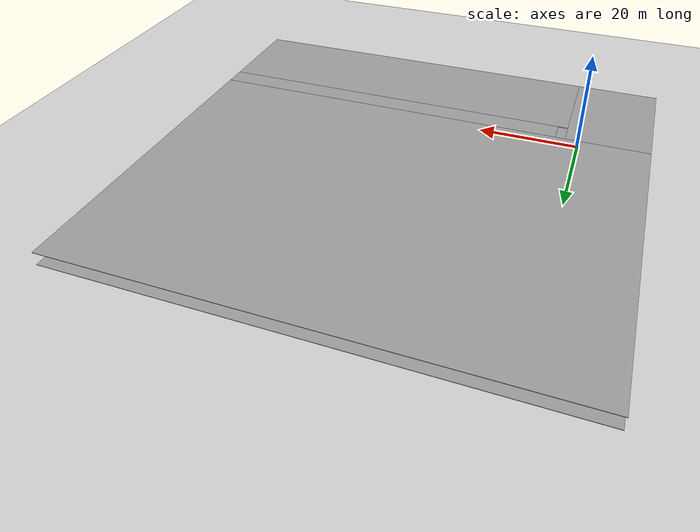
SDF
<sdf version="1.7">
 <world name="default">
  <model name="ground_plane">
   <pose>30 30 0 0 -0 0</pose>
   <static>1</static>
   <link name="link">
    <collision name="collision">
     <geometry><plane><normal>0 0 1</normal><size>100 100</size></plane></geometry>
     <surface><friction><ode><mu>100</mu><mu2>50</mu2></ode></friction></surface>
    </collision>
    <visual name="visual">
     <cast_shadows>0</cast_shadows>
     <geometry><plane><normal>0 0 1</normal><size>100 100</size></plane></geometry>
     <material>
      <script><uri>file://media/materials/scripts/gazebo.material</uri><name>Gazebo/Grey</name></script>
     </material>
    </visual>
   </link>
  </model>
  <model name="Soterrani_AT">
   <pose>30.7763 24.7178 0 0 0 -1.57187</pose>
   <link name="Floor_1">
    <pose>2e-06 -1e-06 2.5 0 -0 0</pose>
    <visual name="Floor_1_Visual_0">
     <pose>-11.1669 0 0.05 0 -0 0</pose>
     <geometry><box><size>60.0186 88.6934 0.1</size></box></geometry>
     <material>
      <script><uri>file://media/materials/scripts/gazebo.material</uri><name>Gazebo/Grey</name></script>
      <ambient>1 1 1 1</ambient>
     </material>
     <meta><layer>1</layer></meta>
    </visual>
    <collision name="Floor_1_Collision_0">
     <geometry><box><size>60.0186 88.6934 0.1</size></box></geometry>
     <pose>-11.1669 0 0.05 0 -0 0</pose>
    </collision>
    <visual name="Floor_1_Visual_1">
     <pose>30.0093 -36.3795 0.05 0 -0 0</pose>
     <geometry><box><size>22.3339 15.9343 0.1</size></box></geometry>
     <material>
      <script><uri>file://media/materials/scripts/gazebo.material</uri><name>Gazebo/Grey</name></script>
      <ambient>1 1 1 1</ambient>
     </material>
     <meta><layer>1</layer></meta>
    </visual>
    <collision name="Floor_1_Collision_1">
     <geometry><box><size>22.3339 15.9343 0.1</size></box></geometry>
     <pose>30.0093 -36.3795 0.05 0 -0 0</pose>
    </collision>
    <visual name="Floor_1_Visual_2">
     <pose>32.0601 7.96714 0.05 0 -0 0</pose>
     <geometry><box><size>18.2324 72.7591 0.1</size></box></geometry>
     <material>
      <script><uri>file://media/materials/scripts/gazebo.material</uri><name>Gazebo/Grey</name></script>
      <ambient>1 1 1 1</ambient>
     </material>
     <meta><layer>1</layer></meta>
    </visual>
    <collision name="Floor_1_Collision_2">
     <geometry><box><size>18.2324 72.7591 0.1</size></box></geometry>
     <pose>32.0601 7.96714 0.05 0 -0 0</pose>
    </collision>
    <visual name="Floor_1_Visual_3">
     <pose>20.8931 8.88068 0.05 0 -0 0</pose>
     <geometry><box><size>4.1015 70.932 0.1</size></box></geometry>
     <material>
      <script><uri>file://media/materials/scripts/gazebo.material</uri><name>Gazebo/Grey</name></script>
      <ambient>1 1 1 1</ambient>
     </material>
     <meta><layer>1</layer></meta>
    </visual>
    <collision name="Floor_1_Collision_3">
     <geometry><box><size>4.1015 70.932 0.1</size></box></geometry>
     <pose>20.8931 8.88068 0.05 0 -0 0</pose>
    </collision>
   </link>
   <link name="Floor_2">
    <pose>2e-06 -1e-06 5 0 -0 0</pose>
    <visual name="Floor_2_Visual_0">
     <pose>-11.1613 0 0.05 0 -0 0</pose>
     <geometry><box><size>60.03 88.6934 0.1</size></box></geometry>
     <material>
      <script><uri>file://media/materials/scripts/gazebo.material</uri><name>Gazebo/Grey</name></script>
      <ambient>1 1 1 1</ambient>
     </material>
     <meta><layer>2</layer></meta>
    </visual>
    <collision name="Floor_2_Collision_0">
     <geometry><box><size>60.03 88.6934 0.1</size></box></geometry>
     <pose>-11.1613 0 0.05 0 -0 0</pose>
    </collision>
    <visual name="Floor_2_Visual_1">
     <pose>30.015 -36.4004 0.05 0 -0 0</pose>
     <geometry><box><size>22.3226 15.8926 0.1</size></box></geometry>
     <material>
      <script><uri>file://media/materials/scripts/gazebo.material</uri><name>Gazebo/Grey</name></script>
      <ambient>1 1 1 1</ambient>
     </material>
     <meta><layer>2</layer></meta>
    </visual>
    <collision name="Floor_2_Collision_1">
     <geometry><box><size>22.3226 15.8926 0.1</size></box></geometry>
     <pose>30.015 -36.4004 0.05 0 -0 0</pose>
    </collision>
    <visual name="Floor_2_Visual_2">
     <pose>32.059 7.94632 0.05 0 -0 0</pose>
     <geometry><box><size>18.2346 72.8007 0.1</size></box></geometry>
     <material>
      <script><uri>file://media/materials/scripts/gazebo.material</uri><name>Gazebo/Grey</name></script>
      <ambient>1 1 1 1</ambient>
     </material>
     <meta><layer>2</layer></meta>
    </visual>
    <collision name="Floor_2_Collision_2">
     <geometry><box><size>18.2346 72.8007 0.1</size></box></geometry>
     <pose>32.059 7.94632 0.05 0 -0 0</pose>
    </collision>
    <visual name="Floor_2_Visual_3">
     <pose>20.8977 8.87865 0.05 0 -0 0</pose>
     <geometry><box><size>4.08797 70.9361 0.1</size></box></geometry>
     <material>
      <script><uri>file://media/materials/scripts/gazebo.material</uri><name>Gazebo/Grey</name></script>
      <ambient>1 1 1 1</ambient>
     </material>
     <meta><layer>2</layer></meta>
    </visual>
    <collision name="Floor_2_Collision_3">
     <geometry><box><size>4.08797 70.9361 0.1</size></box></geometry>
     <pose>20.8977 8.87865 0.05 0 -0 0</pose>
    </collision>
   </link>
   <link name="Stairs_1">
    <visual name="Stairs_1_Visual_0">
     <pose>22.8072 -27.4989 0.083333 0 -0 -1.5708</pose>
     <geometry><box><size>1.82706 0.273433 0.166667</size></box></geometry>
     <material>
      <script><uri>file://media/materials/scripts/gazebo.material</uri><name>Gazebo/Grey</name></script>
      <ambient>1 1 1 1</ambient>
     </material>
     <meta><layer>0</layer></meta>
    </visual>
    <collision name="Stairs_1_Collision_0">
     <geometry><box><size>1.82706 0.273433 0.166667</size></box></geometry>
     <pose>22.8072 -27.4989 0.083333 0 -0 -1.5708</pose>
    </collision>
    <visual name="Stairs_1_Visual_1">
     <pose>22.5337 -27.4989 0.25 0 -0 -1.5708</pose>
     <geometry><box><size>1.82706 0.273433 0.166667</size></box></geometry>
     <material>
      <script><uri>file://media/materials/scripts/gazebo.material</uri><name>Gazebo/Grey</name></script>
      <ambient>1 1 1 1</ambient>
     </material>
     <meta><layer>0</layer></meta>
    </visual>
    <collision name="Stairs_1_Collision_1">
     <geometry><box><size>1.82706 0.273433 0.166667</size></box></geometry>
     <pose>22.5337 -27.4989 0.25 0 -0 -1.5708</pose>
    </collision>
    <visual name="Stairs_1_Visual_2">
     <pose>22.2603 -27.4989 0.416667 0 -0 -1.5708</pose>
     <geometry><box><size>1.82706 0.273433 0.166667</size></box></geometry>
     <material>
      <script><uri>file://media/materials/scripts/gazebo.material</uri><name>Gazebo/Grey</name></script>
      <ambient>1 1 1 1</ambient>
     </material>
     <meta><layer>0</layer></meta>
    </visual>
    <collision name="Stairs_1_Collision_2">
     <geometry><box><size>1.82706 0.273433 0.166667</size></box></geometry>
     <pose>22.2603 -27.4989 0.416667 0 -0 -1.5708</pose>
    </collision>
    <visual name="Stairs_1_Visual_3">
     <pose>21.9869 -27.4989 0.583333 0 -0 -1.5708</pose>
     <geometry><box><size>1.82706 0.273433 0.166667</size></box></geometry>
     <material>
      <script><uri>file://media/materials/scripts/gazebo.material</uri><name>Gazebo/Grey</name></script>
      <ambient>1 1 1 1</ambient>
     </material>
     <meta><layer>0</layer></meta>
    </visual>
    <collision name="Stairs_1_Collision_3">
     <geometry><box><size>1.82706 0.273433 0.166667</size></box></geometry>
     <pose>21.9869 -27.4989 0.583333 0 -0 -1.5708</pose>
    </collision>
    <visual name="Stairs_1_Visual_4">
     <pose>21.7134 -27.4989 0.75 0 -0 -1.5708</pose>
     <geometry><box><size>1.82706 0.273433 0.166667</size></box></geometry>
     <material>
      <script><uri>file://media/materials/scripts/gazebo.material</uri><name>Gazebo/Grey</name></script>
      <ambient>1 1 1 1</ambient>
     </material>
     <meta><layer>0</layer></meta>
    </visual>
    <collision name="Stairs_1_Collision_4">
     <geometry><box><size>1.82706 0.273433 0.166667</size></box></geometry>
     <pose>21.7134 -27.4989 0.75 0 -0 -1.5708</pose>
    </collision>
    <visual name="Stairs_1_Visual_5">
     <pose>21.44 -27.4989 0.916667 0 -0 -1.5708</pose>
     <geometry><box><size>1.82706 0.273433 0.166667</size></box></geometry>
     <material>
      <script><uri>file://media/materials/scripts/gazebo.material</uri><name>Gazebo/Grey</name></script>
      <ambient>1 1 1 1</ambient>
     </material>
     <meta><layer>0</layer></meta>
    </visual>
    <collision name="Stairs_1_Collision_5">
     <geometry><box><size>1.82706 0.273433 0.166667</size></box></geometry>
     <pose>21.44 -27.4989 0.916667 0 -0 -1.5708</pose>
    </collision>
    <visual name="Stairs_1_Visual_6">
     <pose>21.1666 -27.4989 1.08333 0 -0 -1.5708</pose>
     <geometry><box><size>1.82706 0.273433 0.166667</size></box></geometry>
     <material>
      <script><uri>file://media/materials/scripts/gazebo.material</uri><name>Gazebo/Grey</name></script>
      <ambient>1 1 1 1</ambient>
     </material>
     <meta><layer>0</layer></meta>
    </visual>
    <collision name="Stairs_1_Collision_6">
     <geometry><box><size>1.82706 0.273433 0.166667</size></box></geometry>
     <pose>21.1666 -27.4989 1.08333 0 -0 -1.5708</pose>
    </collision>
    <visual name="Stairs_1_Visual_7">
     <pose>20.8931 -27.4989 1.25 0 -0 -1.5708</pose>
     <geometry><box><size>1.82706 0.273433 0.166667</size></box></geometry>
     <material>
      <script><uri>file://media/materials/scripts/gazebo.material</uri><name>Gazebo/Grey</name></script>
      <ambient>1 1 1 1</ambient>
     </material>
     <meta><layer>0</layer></meta>
    </visual>
    <collision name="Stairs_1_Collision_7">
     <geometry><box><size>1.82706 0.273433 0.166667</size></box></geometry>
     <pose>20.8931 -27.4989 1.25 0 -0 -1.5708</pose>
    </collision>
    <visual name="Stairs_1_Visual_8">
     <pose>20.6197 -27.4989 1.41667 0 -0 -1.5708</pose>
     <geometry><box><size>1.82706 0.273433 0.166667</size></box></geometry>
     <material>
      <script><uri>file://media/materials/scripts/gazebo.material</uri><name>Gazebo/Grey</name></script>
      <ambient>1 1 1 1</ambient>
     </material>
     <meta><layer>0</layer></meta>
    </visual>
    <collision name="Stairs_1_Collision_8">
     <geometry><box><size>1.82706 0.273433 0.166667</size></box></geometry>
     <pose>20.6197 -27.4989 1.41667 0 -0 -1.5708</pose>
    </collision>
    <visual name="Stairs_1_Visual_9">
     <pose>20.3463 -27.4989 1.58333 0 -0 -1.5708</pose>
     <geometry><box><size>1.82706 0.273433 0.166667</size></box></geometry>
     <material>
      <script><uri>file://media/materials/scripts/gazebo.material</uri><name>Gazebo/Grey</name></script>
      <ambient>1 1 1 1</ambient>
     </material>
     <meta><layer>0</layer></meta>
    </visual>
    <collision name="Stairs_1_Collision_9">
     <geometry><box><size>1.82706 0.273433 0.166667</size></box></geometry>
     <pose>20.3463 -27.4989 1.58333 0 -0 -1.5708</pose>
    </collision>
    <visual name="Stairs_1_Visual_10">
     <pose>20.0728 -27.4989 1.75 0 -0 -1.5708</pose>
     <geometry><box><size>1.82706 0.273433 0.166667</size></box></geometry>
     <material>
      <script><uri>file://media/materials/scripts/gazebo.material</uri><name>Gazebo/Grey</name></script>
      <ambient>1 1 1 1</ambient>
     </material>
     <meta><layer>0</layer></meta>
    </visual>
    <collision name="Stairs_1_Collision_10">
     <geometry><box><size>1.82706 0.273433 0.166667</size></box></geometry>
     <pose>20.0728 -27.4989 1.75 0 -0 -1.5708</pose>
    </collision>
    <visual name="Stairs_1_Visual_11">
     <pose>19.7994 -27.4989 1.91667 0 -0 -1.5708</pose>
     <geometry><box><size>1.82706 0.273433 0.166667</size></box></geometry>
     <material>
      <script><uri>file://media/materials/scripts/gazebo.material</uri><name>Gazebo/Grey</name></script>
      <ambient>1 1 1 1</ambient>
     </material>
     <meta><layer>0</layer></meta>
    </visual>
    <collision name="Stairs_1_Collision_11">
     <geometry><box><size>1.82706 0.273433 0.166667</size></box></geometry>
     <pose>19.7994 -27.4989 1.91667 0 -0 -1.5708</pose>
    </collision>
    <visual name="Stairs_1_Visual_12">
     <pose>19.526 -27.4989 2.08333 0 -0 -1.5708</pose>
     <geometry><box><size>1.82706 0.273433 0.166667</size></box></geometry>
     <material>
      <script><uri>file://media/materials/scripts/gazebo.material</uri><name>Gazebo/Grey</name></script>
      <ambient>1 1 1 1</ambient>
     </material>
     <meta><layer>0</layer></meta>
    </visual>
    <collision name="Stairs_1_Collision_12">
     <geometry><box><size>1.82706 0.273433 0.166667</size></box></geometry>
     <pose>19.526 -27.4989 2.08333 0 -0 -1.5708</pose>
    </collision>
    <visual name="Stairs_1_Visual_13">
     <pose>19.2525 -27.4989 2.25 0 -0 -1.5708</pose>
     <geometry><box><size>1.82706 0.273433 0.166667</size></box></geometry>
     <material>
      <script><uri>file://media/materials/scripts/gazebo.material</uri><name>Gazebo/Grey</name></script>
      <ambient>1 1 1 1</ambient>
     </material>
     <meta><layer>0</layer></meta>
    </visual>
    <collision name="Stairs_1_Collision_13">
     <geometry><box><size>1.82706 0.273433 0.166667</size></box></geometry>
     <pose>19.2525 -27.4989 2.25 0 -0 -1.5708</pose>
    </collision>
    <visual name="Stairs_1_Visual_14">
     <pose>18.9791 -27.4989 2.41667 0 -0 -1.5708</pose>
     <geometry><box><size>1.82706 0.273433 0.166667</size></box></geometry>
     <material>
      <script><uri>file://media/materials/scripts/gazebo.material</uri><name>Gazebo/Grey</name></script>
      <ambient>1 1 1 1</ambient>
     </material>
     <meta><layer>0</layer></meta>
    </visual>
    <collision name="Stairs_1_Collision_14">
     <geometry><box><size>1.82706 0.273433 0.166667</size></box></geometry>
     <pose>18.9791 -27.4989 2.41667 0 -0 -1.5708</pose>
    </collision>
   </link>
   <static>1</static>
  </model>
 </world>
</sdf>
